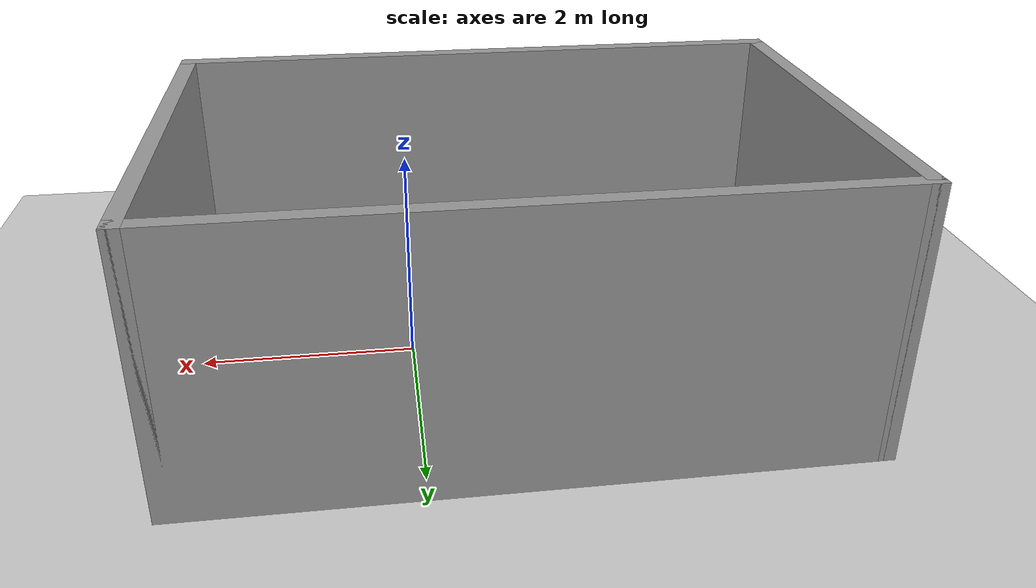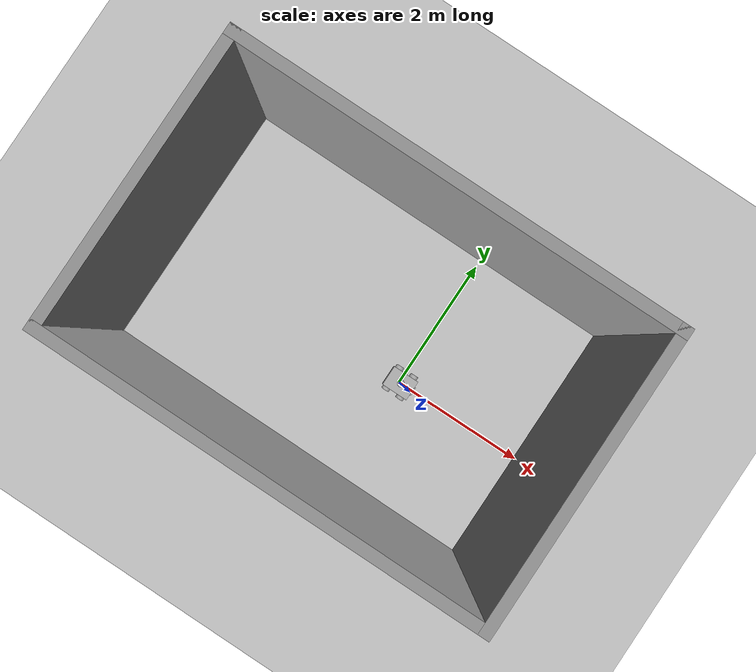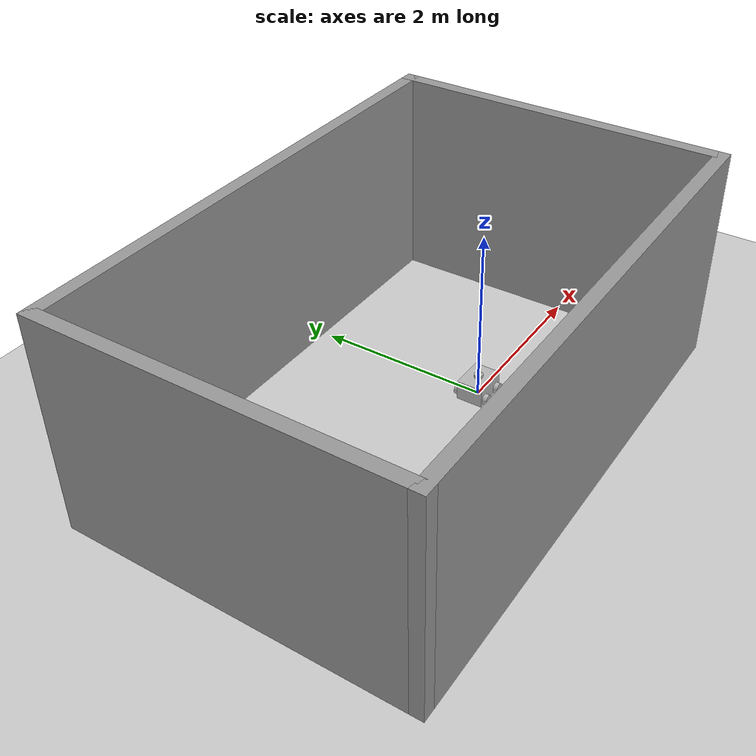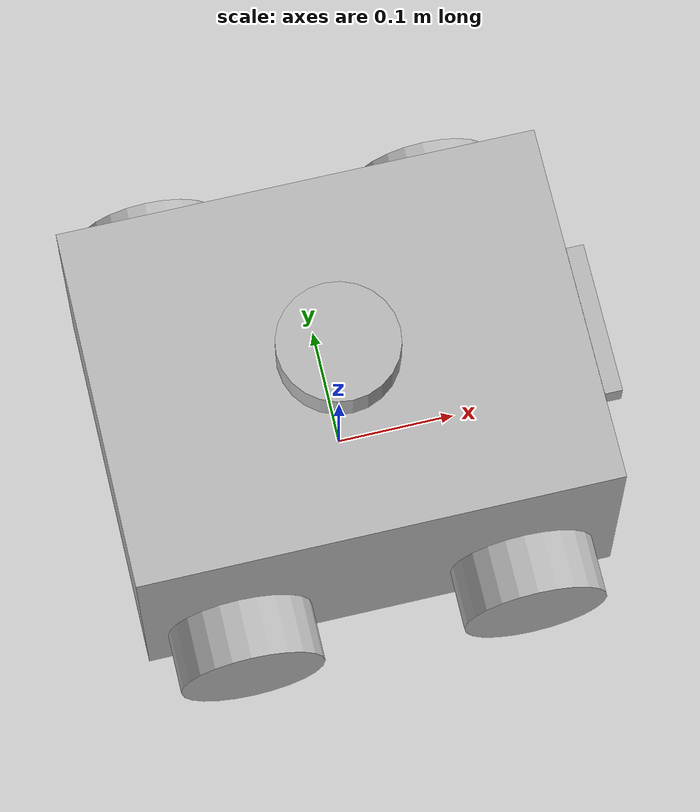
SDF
<sdf version="1.7">
 <world name="default">
  <light name="sun" type="directional">
   <pose>0 0 10 0 -0 0</pose>
   <diffuse>0.8 0.8 0.8 1</diffuse>
   <specular>0.2 0.2 0.2 1</specular>
   <attenuation>
    <range>1000</range>
    <constant>0.9</constant>
    <linear>0.01</linear>
    <quadratic>0.001</quadratic>
   </attenuation>
   <direction>-0.5 0.1 -0.9</direction>
   <spot><inner_angle>0</inner_angle><outer_angle>0</outer_angle><falloff>0</falloff></spot>
  </light>
  <model name="ground_plane">
   <static>1</static>
   <link name="link">
    <collision name="collision">
     <geometry><plane><normal>0 0 1</normal><size>100 100</size></plane></geometry>
     <surface><friction><ode><mu>100</mu><mu2>50</mu2></ode></friction></surface>
    </collision>
    <visual name="visual">
     <cast_shadows>0</cast_shadows>
     <geometry><plane><normal>0 0 1</normal><size>100 100</size></plane></geometry>
     <material>
      <script><uri>file://media/materials/scripts/gazebo.material</uri><name>Gazebo/Grey</name></script>
     </material>
    </visual>
   </link>
  </model>
  <gravity>0 0 -9.8</gravity>
  <magnetic_field>6e-06 2.3e-05 -4.2e-05</magnetic_field>
  <atmosphere type="adiabatic"/>
  <physics type="ode">
   <max_step_size>0.001</max_step_size>
   <real_time_factor>1</real_time_factor>
   <real_time_update_rate>1000</real_time_update_rate>
  </physics>
  <scene><ambient>0.4 0.4 0.4 1</ambient><background>0.7 0.7 0.7 1</background><shadows>1</shadows></scene>
  <spherical_coordinates>
   <surface_model>EARTH_WGS84</surface_model>
   <latitude_deg>0</latitude_deg>
   <longitude_deg>0</longitude_deg>
   <elevation>0</elevation>
   <heading_deg>0</heading_deg>
  </spherical_coordinates>
  <model name="my_bot">
   <link name="base_link">
    <inertial>
     <pose>0.000493 0 0.001163 1.5708 -0 1.5708</pose>
     <mass>15.26</mass>
     <inertia>
      <ixx>0.271783</ixx>
      <ixy>-1.04103e-19</ixy>
      <ixz>-4.57256e-19</ixz>
      <iyy>0.320062</iyy>
      <iyz>-0.000367497</iyz>
      <izz>0.18645</izz>
     </inertia>
    </inertial>
    <collision name="base_link_collision"><geometry><box><size>0.4 0.305 0.23</size></box></geometry></collision>
    <collision name="base_link_fixed_joint_lump__camera_link_collision_1">
     <pose>0.215 0 0.05 0 -0 0</pose>
     <geometry><box><size>0.015 0.13 0.022</size></box></geometry>
    </collision>
    <collision name="base_link_fixed_joint_lump__imu_link_collision_2">
     <pose>0 0 0.01 0 -0 0</pose>
     <geometry><box><size>0.1 0.1 0.1</size></box></geometry>
    </collision>
    <collision name="base_link_fixed_joint_lump__lidar_link_collision_3">
     <pose>0 0 0.12 0 -0 0</pose>
     <geometry><cylinder><length>0.055</length><radius>0.0508</radius></cylinder></geometry>
    </collision>
    <visual name="base_link_visual"><geometry><box><size>0.4 0.305 0.23</size></box></geometry></visual>
    <visual name="base_link_fixed_joint_lump__camera_link_visual_1">
     <pose>0.215 0 0.05 0 -0 0</pose>
     <geometry><box><size>0.015 0.13 0.022</size></box></geometry>
    </visual>
    <visual name="base_link_fixed_joint_lump__imu_link_visual_2">
     <pose>0 0 0.01 0 -0 0</pose>
     <geometry><box><size>0.1 0.1 0.1</size></box></geometry>
    </visual>
    <visual name="base_link_fixed_joint_lump__lidar_link_visual_3">
     <pose>0 0 0.12 0 -0 0</pose>
     <geometry><cylinder><length>0.055</length><radius>0.0508</radius></cylinder></geometry>
    </visual>
    <sensor name="depth_camera" type="depth">
     <visualize>1</visualize>
     <update_rate>30</update_rate>
     <camera name="camera">
      <horizontal_fov>1.0472</horizontal_fov>
      <image><width>640</width><height>480</height><format>R8G8B8</format></image>
      <clip><near>0.05</near><far>3</far></clip>
     </camera>
     <plugin name="depth_camera_controller" filename="libgazebo_ros_camera.so">
      <baseline>0.2</baseline>
      <alwaysOn>1</alwaysOn>
      <updateRate>0.0</updateRate>
      <frame_name>camera_depth_frame</frame_name>
      <pointCloudCutoff>0.5</pointCloudCutoff>
      <pointCloudCutoffMax>3.0</pointCloudCutoffMax>
      <distortionK1>0</distortionK1>
      <distortionK2>0</distortionK2>
      <distortionK3>0</distortionK3>
      <distortionT1>0</distortionT1>
      <distortionT2>0</distortionT2>
      <CxPrime>0</CxPrime>
      <Cx>0</Cx>
      <Cy>0</Cy>
      <focalLength>0</focalLength>
      <hackBaseline>0</hackBaseline>
     </plugin>
     <pose>0.215 0 0.05 0 -0 0</pose>
    </sensor>
    <sensor name="imu_sensor" type="imu">
     <plugin name="imu_plugin" filename="libgazebo_ros_imu_sensor.so">
      <ros><namespace>/demo</namespace><remapping>~/out:=imu</remapping></ros>
      <initial_orientation_as_reference>0</initial_orientation_as_reference>
     </plugin>
     <always_on>1</always_on>
     <update_rate>100</update_rate>
     <visualize>1</visualize>
     <imu>
      <angular_velocity>
       <x>
        <noise type="gaussian">
         <mean>0</mean>
         <stddev>0.0002</stddev>
         <bias_mean>7.5e-06</bias_mean>
         <bias_stddev>8e-07</bias_stddev>
        </noise>
       </x>
       <y>
        <noise type="gaussian">
         <mean>0</mean>
         <stddev>0.0002</stddev>
         <bias_mean>7.5e-06</bias_mean>
         <bias_stddev>8e-07</bias_stddev>
        </noise>
       </y>
       <z>
        <noise type="gaussian">
         <mean>0</mean>
         <stddev>0.0002</stddev>
         <bias_mean>7.5e-06</bias_mean>
         <bias_stddev>8e-07</bias_stddev>
        </noise>
       </z>
      </angular_velocity>
      <linear_acceleration>
       <x>
        <noise type="gaussian">
         <mean>0</mean>
         <stddev>0.017</stddev>
         <bias_mean>0.1</bias_mean>
         <bias_stddev>0.001</bias_stddev>
        </noise>
       </x>
       <y>
        <noise type="gaussian">
         <mean>0</mean>
         <stddev>0.017</stddev>
         <bias_mean>0.1</bias_mean>
         <bias_stddev>0.001</bias_stddev>
        </noise>
       </y>
       <z>
        <noise type="gaussian">
         <mean>0</mean>
         <stddev>0.017</stddev>
         <bias_mean>0.1</bias_mean>
         <bias_stddev>0.001</bias_stddev>
        </noise>
       </z>
      </linear_acceleration>
     </imu>
     <pose>0 0 0.01 0 -0 0</pose>
    </sensor>
    <sensor name="lidar" type="ray">
     <always_on>1</always_on>
     <visualize>1</visualize>
     <update_rate>5</update_rate>
     <ray>
      <scan>
       <horizontal>
        <samples>360</samples>
        <resolution>1</resolution>
        <min_angle>0</min_angle>
        <max_angle>6.28</max_angle>
       </horizontal>
       <vertical><samples>1</samples><min_angle>0</min_angle><max_angle>0</max_angle></vertical>
      </scan>
      <range><min>0.12</min><max>3.5</max><resolution>0.015</resolution></range>
      <noise><type>gaussian</type><mean>0</mean><stddev>0.01</stddev></noise>
     </ray>
     <plugin name="scan" filename="libgazebo_ros_ray_sensor.so">
      <ros><remapping>~/out:=scan</remapping></ros>
      <output_type>sensor_msgs/LaserScan</output_type>
      <frame_name>lidar_link</frame_name>
     </plugin>
     <pose>0 0 0.12 0 -0 0</pose>
    </sensor>
   </link>
   <joint name="drivewhl_fl_joint" type="revolute">
    <pose relative_to="base_link">0.12 -0.1775 -0.05 0 -0 0</pose>
    <parent>base_link</parent>
    <child>drivewhl_fl_link</child>
    <axis>
     <xyz>0 1 0</xyz>
     <limit><lower>-1e+16</lower><upper>1e+16</upper></limit>
     <dynamics><spring_reference>0</spring_reference><spring_stiffness>0</spring_stiffness></dynamics>
    </axis>
   </joint>
   <link name="drivewhl_fl_link">
    <pose relative_to="drivewhl_fl_joint">0 0 0 0 -0 0</pose>
    <inertial>
     <pose>0 0 0 1.5708 -0 0</pose>
     <mass>0.5</mass>
     <inertia>
      <ixx>0.000567768</ixx>
      <ixy>0</ixy>
      <ixz>0</ixz>
      <iyy>0.000567768</iyy>
      <iyz>0</iyz>
      <izz>0.000927203</izz>
     </inertia>
    </inertial>
    <collision name="drivewhl_fl_link_collision">
     <pose>0 0 0 1.5708 -0 0</pose>
     <geometry><cylinder><length>0.05</length><radius>0.0609</radius></cylinder></geometry>
    </collision>
    <visual name="drivewhl_fl_link_visual">
     <pose>0 0 0 1.5708 -0 0</pose>
     <geometry><cylinder><length>0.05</length><radius>0.0609</radius></cylinder></geometry>
    </visual>
   </link>
   <joint name="drivewhl_fr_joint" type="revolute">
    <pose relative_to="base_link">0.12 0.1775 -0.05 0 -0 0</pose>
    <parent>base_link</parent>
    <child>drivewhl_fr_link</child>
    <axis>
     <xyz>0 1 0</xyz>
     <limit><lower>-1e+16</lower><upper>1e+16</upper></limit>
     <dynamics><spring_reference>0</spring_reference><spring_stiffness>0</spring_stiffness></dynamics>
    </axis>
   </joint>
   <link name="drivewhl_fr_link">
    <pose relative_to="drivewhl_fr_joint">0 0 0 0 -0 0</pose>
    <inertial>
     <pose>0 0 0 1.5708 -0 0</pose>
     <mass>0.5</mass>
     <inertia>
      <ixx>0.000567768</ixx>
      <ixy>0</ixy>
      <ixz>0</ixz>
      <iyy>0.000567768</iyy>
      <iyz>0</iyz>
      <izz>0.000927203</izz>
     </inertia>
    </inertial>
    <collision name="drivewhl_fr_link_collision">
     <pose>0 0 0 1.5708 -0 0</pose>
     <geometry><cylinder><length>0.05</length><radius>0.0609</radius></cylinder></geometry>
    </collision>
    <visual name="drivewhl_fr_link_visual">
     <pose>0 0 0 1.5708 -0 0</pose>
     <geometry><cylinder><length>0.05</length><radius>0.0609</radius></cylinder></geometry>
    </visual>
   </link>
   <joint name="drivewhl_lr_joint" type="revolute">
    <pose relative_to="base_link">-0.12 0.1775 -0.05 0 -0 0</pose>
    <parent>base_link</parent>
    <child>drivewhl_lr_link</child>
    <axis>
     <xyz>0 1 0</xyz>
     <limit><lower>-1e+16</lower><upper>1e+16</upper></limit>
     <dynamics><spring_reference>0</spring_reference><spring_stiffness>0</spring_stiffness></dynamics>
    </axis>
   </joint>
   <link name="drivewhl_lr_link">
    <pose relative_to="drivewhl_lr_joint">0 0 0 0 -0 0</pose>
    <inertial>
     <pose>0 0 0 1.5708 -0 0</pose>
     <mass>0.5</mass>
     <inertia>
      <ixx>0.000567768</ixx>
      <ixy>0</ixy>
      <ixz>0</ixz>
      <iyy>0.000567768</iyy>
      <iyz>0</iyz>
      <izz>0.000927203</izz>
     </inertia>
    </inertial>
    <collision name="drivewhl_lr_link_collision">
     <pose>0 0 0 1.5708 -0 0</pose>
     <geometry><cylinder><length>0.05</length><radius>0.0609</radius></cylinder></geometry>
    </collision>
    <visual name="drivewhl_lr_link_visual">
     <pose>0 0 0 1.5708 -0 0</pose>
     <geometry><cylinder><length>0.05</length><radius>0.0609</radius></cylinder></geometry>
    </visual>
   </link>
   <joint name="drivewhl_rr_joint" type="revolute">
    <pose relative_to="base_link">-0.12 -0.1775 -0.05 0 -0 0</pose>
    <parent>base_link</parent>
    <child>drivewhl_rr_link</child>
    <axis>
     <xyz>0 1 0</xyz>
     <limit><lower>-1e+16</lower><upper>1e+16</upper></limit>
     <dynamics><spring_reference>0</spring_reference><spring_stiffness>0</spring_stiffness></dynamics>
    </axis>
   </joint>
   <link name="drivewhl_rr_link">
    <pose relative_to="drivewhl_rr_joint">0 0 0 0 -0 0</pose>
    <inertial>
     <pose>0 0 0 1.5708 -0 0</pose>
     <mass>0.5</mass>
     <inertia>
      <ixx>0.000567768</ixx>
      <ixy>0</ixy>
      <ixz>0</ixz>
      <iyy>0.000567768</iyy>
      <iyz>0</iyz>
      <izz>0.000927203</izz>
     </inertia>
    </inertial>
    <collision name="drivewhl_rr_link_collision">
     <pose>0 0 0 1.5708 -0 0</pose>
     <geometry><cylinder><length>0.05</length><radius>0.0609</radius></cylinder></geometry>
    </collision>
    <visual name="drivewhl_rr_link_visual">
     <pose>0 0 0 1.5708 -0 0</pose>
     <geometry><cylinder><length>0.05</length><radius>0.0609</radius></cylinder></geometry>
    </visual>
   </link>
   <static>0</static>
   <plugin name="wheel_drive_controller" filename="libgazebo_ros_diff_drive.so">
    <num_wheel_pairs>2</num_wheel_pairs>
    <left_joint>drivewhl_fl_joint</left_joint>
    <left_joint>drivewhl_lr_joint</left_joint>
    <right_joint>drivewhl_fr_joint</right_joint>
    <right_joint>drivewhl_rr_joint</right_joint>
    <wheel_separation>0.4</wheel_separation>
    <wheel_diameter>0.1</wheel_diameter>
    <max_wheel_torque>20.0</max_wheel_torque>
    <max_wheel_acceleration>10.0</max_wheel_acceleration>
    <odometry_source>world</odometry_source>
    <odometry_frame>odom</odometry_frame>
    <robot_base_frame>base_link</robot_base_frame>
    <ros><namespace>/</namespace><argument>/cmd_vel:=cmd_vel</argument><argument>/odom:=odom</argument></ros>
    <publish_odom>1</publish_odom>
    <publish_odom_tf>1</publish_odom_tf>
    <update_rate>100.0</update_rate>
   </plugin>
   <pose>-0 -0 0.115 0 -0 0</pose>
  </model>
  <model name="ACSO_TEST_35">
   <pose>-0.885 0.265 0 0 -0 0</pose>
   <link name="Wall_10">
    <collision name="Wall_10_Collision">
     <geometry><box><size>6 0.15 2.5</size></box></geometry>
     <pose>0 0 1.25 0 -0 0</pose>
    </collision>
    <visual name="Wall_10_Visual">
     <pose>0 0 1.25 0 -0 0</pose>
     <geometry><box><size>6 0.15 2.5</size></box></geometry>
     <material>
      <script><uri>file://media/materials/scripts/gazebo.material</uri><name>Gazebo/Grey</name></script>
      <ambient>1 1 1 1</ambient>
     </material>
     <meta><layer>0</layer></meta>
    </visual>
    <pose>0 1.925 0 0 -0 0</pose>
   </link>
   <link name="Wall_11">
    <collision name="Wall_11_Collision">
     <geometry><box><size>4 0.15 2.5</size></box></geometry>
     <pose>0 0 1.25 0 -0 0</pose>
    </collision>
    <visual name="Wall_11_Visual">
     <pose>0 0 1.25 0 -0 0</pose>
     <geometry><box><size>4 0.15 2.5</size></box></geometry>
     <material>
      <script><uri>file://media/materials/scripts/gazebo.material</uri><name>Gazebo/Grey</name></script>
      <ambient>1 1 1 1</ambient>
     </material>
     <meta><layer>0</layer></meta>
    </visual>
    <pose>2.925 -0 0 0 -0 -1.5708</pose>
   </link>
   <link name="Wall_7">
    <collision name="Wall_7_Collision">
     <geometry><box><size>6 0.15 2.5</size></box></geometry>
     <pose>0 0 1.25 0 -0 0</pose>
    </collision>
    <visual name="Wall_7_Visual">
     <pose>0 0 1.25 0 -0 0</pose>
     <geometry><box><size>6 0.15 2.5</size></box></geometry>
     <material>
      <script><uri>file://media/materials/scripts/gazebo.material</uri><name>Gazebo/Grey</name></script>
      <ambient>1 1 1 1</ambient>
     </material>
     <meta><layer>0</layer></meta>
    </visual>
    <pose>0 -1.925 0 0 -0 3.14159</pose>
   </link>
   <link name="Wall_9">
    <collision name="Wall_9_Collision">
     <geometry><box><size>4 0.15 2.5</size></box></geometry>
     <pose>0 0 1.25 0 -0 0</pose>
    </collision>
    <visual name="Wall_9_Visual">
     <pose>0 0 1.25 0 -0 0</pose>
     <geometry><box><size>4 0.15 2.5</size></box></geometry>
     <material>
      <script><uri>file://media/materials/scripts/gazebo.material</uri><name>Gazebo/Grey</name></script>
      <ambient>1 1 1 1</ambient>
     </material>
     <meta><layer>0</layer></meta>
    </visual>
    <pose>-2.925 -0 0 0 -0 1.5708</pose>
   </link>
   <static>1</static>
  </model>
 </world>
</sdf>
